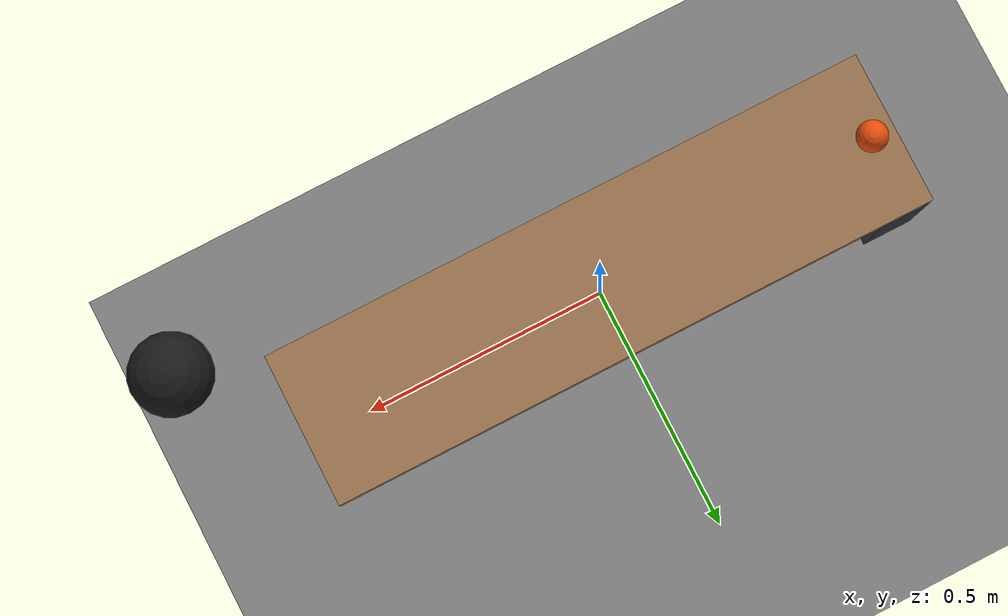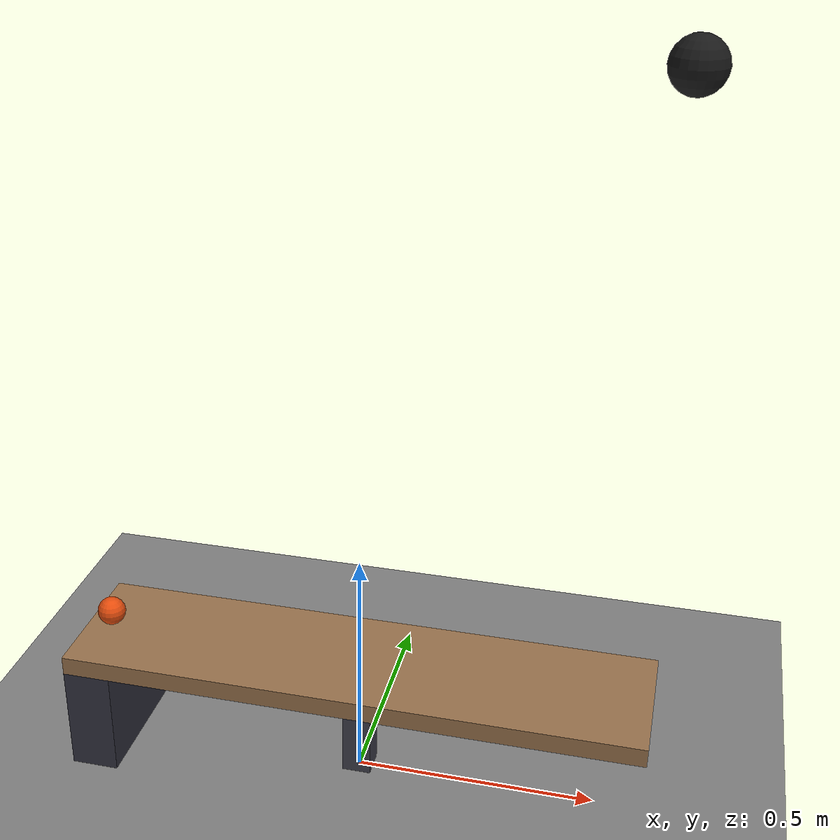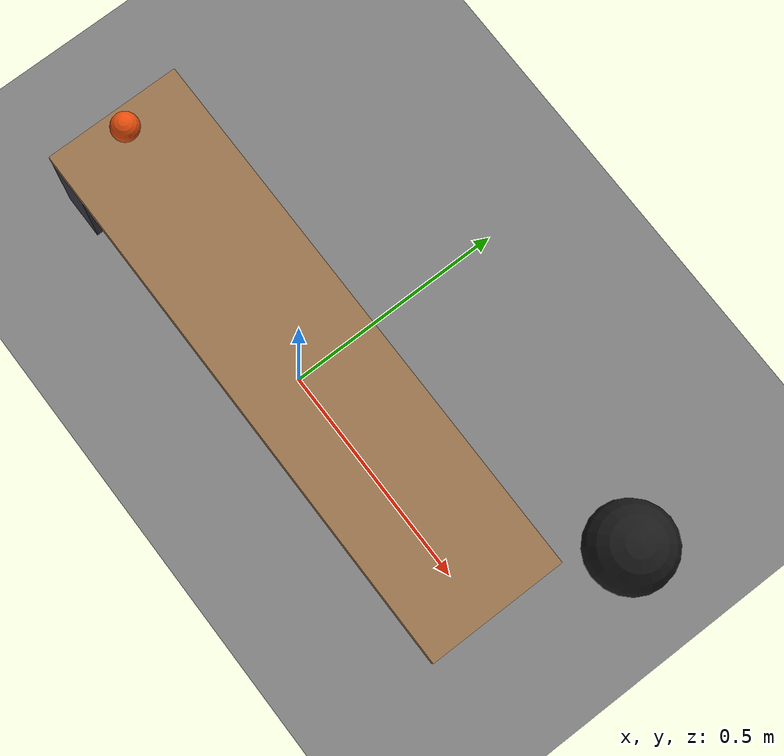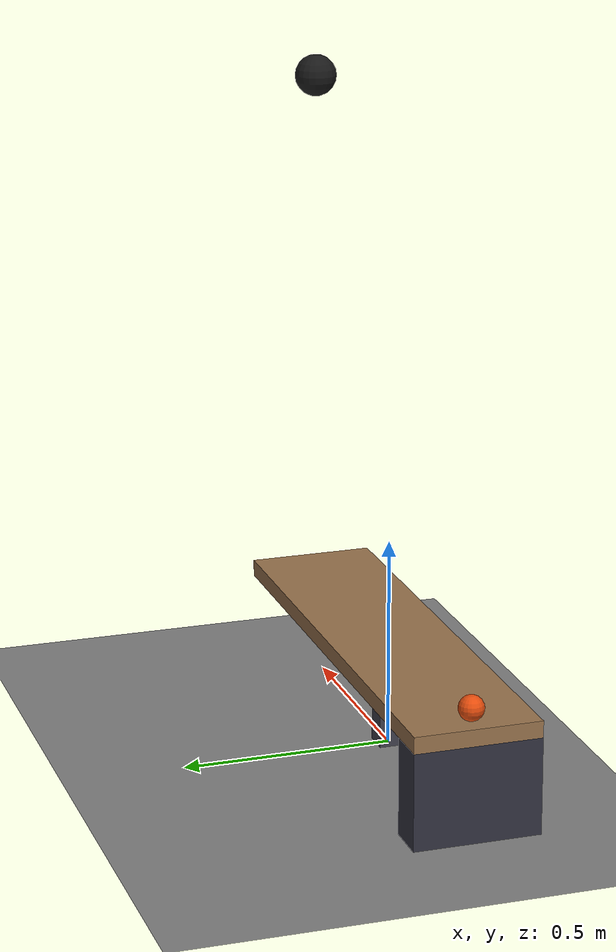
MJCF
<mujoco model="seesaw_throw">
  <compiler angle="radian"/>
  <option timestep="0.002"/>
  <worldbody>
    <geom name="floor" type="plane" size="8 8 0.1" friction="0.8 0.005 0.002"/>
    <body name="seesaw" pos="0 0 0.25">
      <joint name="seesaw_hinge" type="hinge" pos="0 0 0" axis="0 1 0"/>
      <geom name="seesaw" type="box" pos="0 0 0" size="0.6 0.15 0.02" mass="0.6" friction="0.8 0.01 0.004" rgba="0.6 0.45 0.3 1"/>
    </body>
    <body name="stand">
      <geom name="stand" type="box" pos="0 0 0.115" size="0.03 0.03 0.115" contype="0" conaffinity="0" rgba="0.25 0.25 0.3 1"/>
    </body>
    <body name="rest block">
      <geom name="rest block" type="box" pos="-0.55 0 0.115" size="0.05 0.15 0.115" rgba="0.2 0.2 0.25 1"/>
    </body>
    <body name="ball" pos="-0.55 0 0.3">
      <freejoint/>
      <geom name="ball" type="sphere" pos="0 0 0" size="0.03" mass="0.1" condim="6" friction="0.8 0.01 0.004" rgba="0.9 0.3 0.05 1"/>
    </body>
    <body name="weight" pos="0.55 0 1.5">
      <freejoint/>
      <geom name="weight" type="sphere" pos="0 0 0" size="0.05" mass="1" friction="0.8 0.01 0.004" rgba="0.1 0.1 0.1 1"/>
    </body>
  </worldbody>
  <keyframe>
    <key name="start" qpos="0 -0.55 0 0.3 1 0 0 0 0.55 0 1.5 1 0 0 0" qvel="0 0 0 0 0 0 0 0 0 0 0 0 0"/>
  </keyframe>
</mujoco>
